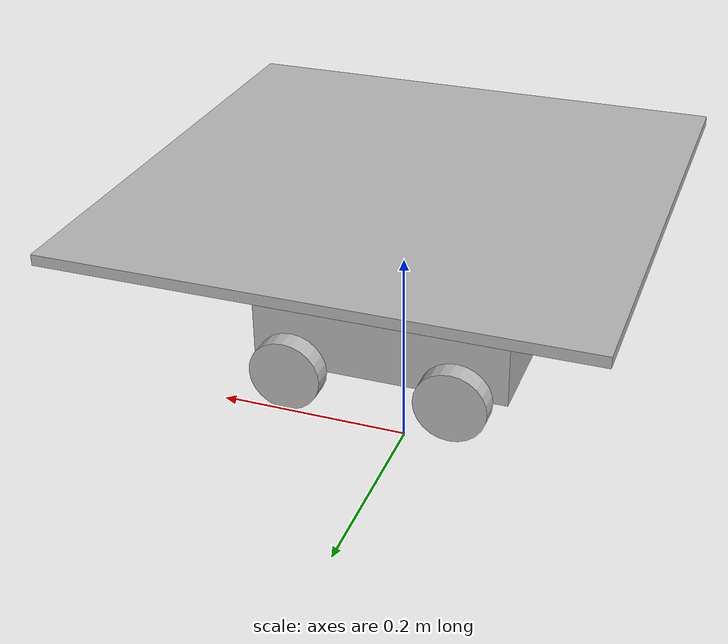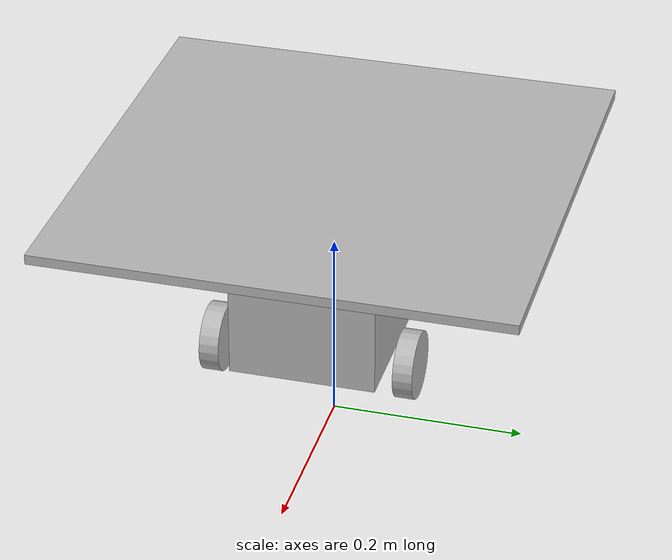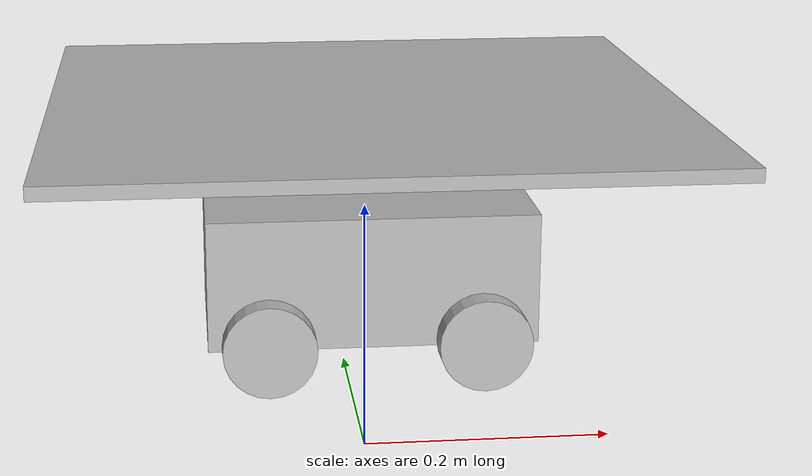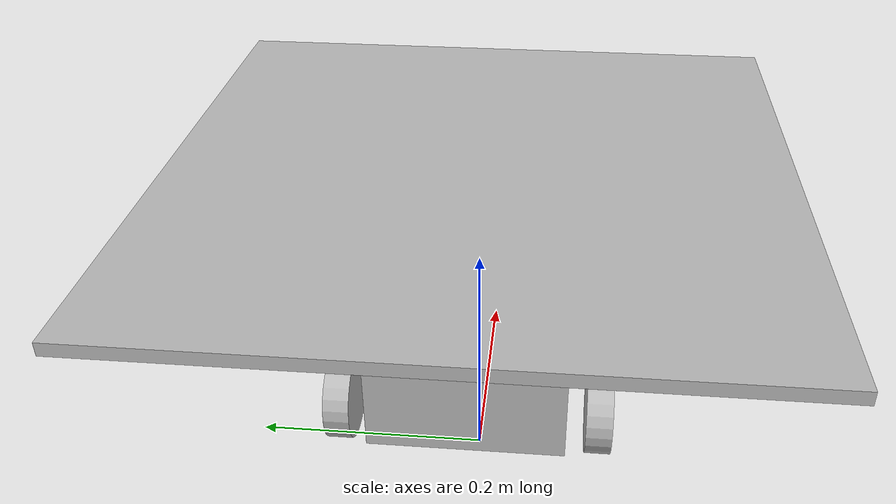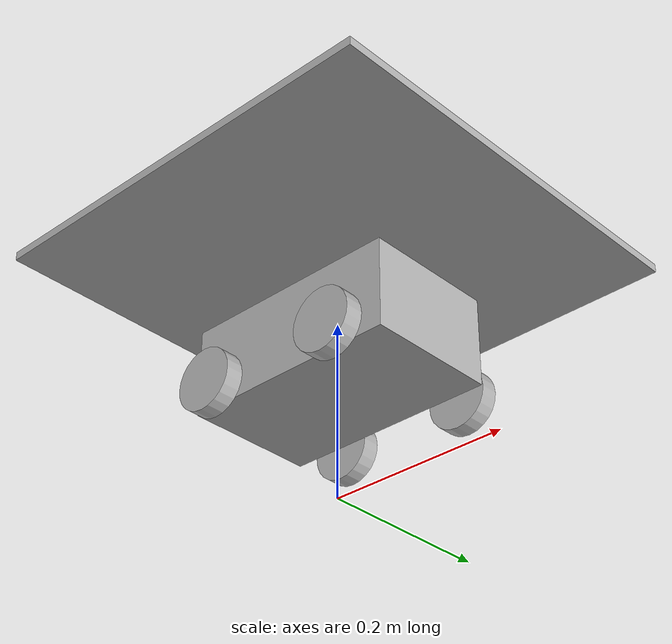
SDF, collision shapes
<?xml version="1.0" ?>
<sdf version="1.5">
  <model name="wheeltec_aruco_down">

    <include>
      <uri>model://wheeltec</uri>
    </include>

    <link name='tag'>
      <pose frame=''> 0.0 0.0 0.28 0.0 0.0 0.0</pose>
      <inertial>
        <mass>0.1</mass>
        <inertia>
          <ixx>0</ixx>
          <ixy>0</ixy>
          <ixz>0</ixz>
          <iyy>0</iyy>
          <iyz>0</iyz>
          <izz>0</izz>
        </inertia>
      </inertial>
      <collision name="platform_collision">
        <geometry>
          <box>
            <size>0.48 0.48 0.01</size>
          </box>
        </geometry>
        <surface>
          <friction>
            <ode>
              <mu>1.0</mu>
              <mu2>1.0</mu2>
            </ode>
          </friction>
        </surface>
      </collision>
      <visual name="visual">
        <cast_shadows>false</cast_shadows>
        <geometry>
          <box>
            <size>0.48 0.48 0.01</size>
          </box>
        </geometry>
        <material>
          <script>
            <uri>model://single_aruco/single_aruco.material</uri>
            <name>aruco_92</name>
          </script>
        </material>
      </visual>
    </link>

    <joint name='tag0_link' type='fixed'>
      <pose>0 0 0 0 -0 0</pose>
      <child>tag</child>
      <parent>wheeltec::base_link</parent>
      <axis>
        <xyz expressed_in='__model__'>0 1 0</xyz>
        <limit>
          <lower>-1e+16</lower>
          <upper>1e+16</upper>
        </limit>
        <dynamics>
          <spring_reference>0</spring_reference>
          <spring_stiffness>0</spring_stiffness>
        </dynamics>
      </axis>
    </joint>
    </model>
</sdf>

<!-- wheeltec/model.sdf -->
<sdf version="1.5">
  <model name="wheeltec">
    <link name="base_link">
      <pose>0 0 0.16 0 0 0</pose>
      <inertial>
        <mass>2</mass>
        <inertia>
          <ixx>0.028819942</ixx>
          <iyy>0.047333716</iyy>
          <izz>0.054201740</izz>
          <ixy>0</ixy>
          <ixz>0</ixz>
          <iyz>0</iyz>
        </inertia>
      </inertial>
      <collision name="collision">
        <pose>0 0 0 0 0 0</pose>
        <geometry>
          <box>
            <size>0.25 0.15 0.1</size>
          </box>
        </geometry>
      </collision>
      <visual name="visual">
        <pose>0.045 0 -0.05 1.57 0 0</pose>
        <geometry>
          <mesh>
            <uri>model://wheeltec/meshes/body.dae</uri>
          </mesh>
        </geometry>
      </visual>
    </link>

    <link name="right_front_wheel">
      <pose>0.08 -0.1 0.12 1.57 0 0</pose>
      <inertial>
        <mass>0.3844</mass>
        <inertia>
          <ixx>0.000480000</ixx>
          <iyy>0.000480000</iyy>
          <izz>0.000480000</izz>
          <ixy>0</ixy>
          <ixz>0</ixz>
          <iyz>0</iyz>
        </inertia>
      </inertial>
      <collision name='right_front_wheel_collision'>
        <pose>0 0 0 0 0 0</pose>
        <geometry>
          <cylinder>
            <length>0.02</length>
            <radius>0.035</radius>
          </cylinder>
        </geometry>
        <surface>
          <friction>
            <ode>
              <mu>0.5</mu>
              <mu2>0.3</mu2>
              <slip1>0.0</slip1>
              <slip2>0.0</slip2>
            </ode>
          </friction>
          <contact>
            <ode>
              <min_depth>0.001</min_depth>
            </ode>
          </contact>
        </surface>
      </collision>
      <visual name="visual">
        <pose>-0.035 0.015 -0.1 3.14 0 0</pose>
        <geometry>
          <mesh>
            <uri>model://wheeltec/meshes/front.dae</uri>
          </mesh>
        </geometry>
      </visual>
    </link>

    <link name="right_after_wheel">
      <pose>-0.08 -0.1 0.12 1.57 0 0</pose>
      <inertial>
        <mass>0.3844</mass>
        <inertia>
          <ixx>0.000480000</ixx>
          <iyy>0.000480000</iyy>
          <izz>0.000480000</izz>
          <ixy>0</ixy>
          <ixz>0</ixz>
          <iyz>0</iyz>
        </inertia>
      </inertial>
      <collision name='right_after_wheel_collision'>
        <pose>0 0 0 0 0 0</pose>
        <geometry>
          <cylinder>
            <length>0.02</length>
            <radius>0.035</radius>
          </cylinder>
        </geometry>
        <surface>
          <friction>
            <ode>
              <mu>0.5</mu>
              <mu2>0.3</mu2>
              <slip1>0.0</slip1>
              <slip2>0.0</slip2>
            </ode>
          </friction>
          <contact>
            <ode>
              <min_depth>0.001</min_depth>
            </ode>
          </contact>
        </surface>
      </collision>
      <visual name="visual">
        <pose>-0.035 0.015 -0.1 3.14 0 0</pose>
        <geometry>
          <mesh>
            <uri>model://wheeltec/meshes/front.dae</uri>
          </mesh>
        </geometry>
      </visual>
    </link>

    <link name="left_front_wheel">
      <pose>0.08 0.1 0.12 1.57 0 0</pose>
      <inertial>
        <mass>0.3844</mass>
        <inertia>
          <ixx>0.000480000</ixx>
          <iyy>0.000480000</iyy>
          <izz>0.000480000</izz>
          <ixy>0</ixy>
          <ixz>0</ixz>
          <iyz>0</iyz>
        </inertia>
      </inertial>
      <collision name='left_front_wheel_collision'>
        <pose>0 0 0 0 0 0</pose>
        <geometry>
          <cylinder>
            <length>0.02</length>
            <radius>0.035</radius>
          </cylinder>
        </geometry>
        <surface>
          <friction>
            <ode>
              <mu>0.5</mu>
              <mu2>0.3</mu2>
              <slip1>0.0</slip1>
              <slip2>0.0</slip2>
            </ode>
          </friction>
          <contact>
            <ode>
              <min_depth>0.001</min_depth>
            </ode>
          </contact>
        </surface>
      </collision>
      <visual name="visual">
        <pose>-0.035 -0.015 0.1 0 0 0</pose>
        <geometry>
          <mesh>
            <uri>model://wheeltec/meshes/front.dae</uri>
          </mesh>
        </geometry>
      </visual>
    </link>

    <link name="left_after_wheel">
      <pose>-0.08 0.1 0.12 1.57 0 0</pose>
      <inertial>
        <mass>0.3844</mass>
        <inertia>
          <ixx>0.000480000</ixx>
          <iyy>0.000480000</iyy>
          <izz>0.000480000</izz>
          <ixy>0</ixy>
          <ixz>0</ixz>
          <iyz>0</iyz>
        </inertia>
      </inertial>
      <collision name='left_after_wheel_collision'>
        <pose>0 0 0 0 0 0</pose>
        <geometry>
          <cylinder>
            <length>0.02</length>
            <radius>0.035</radius>
          </cylinder>
        </geometry>
        <surface>
          <friction>
            <ode>
              <mu>0.5</mu>
              <mu2>0.3</mu2>
              <slip1>0.0</slip1>
              <slip2>0.0</slip2>
            </ode>
          </friction>
          <contact>
            <ode>
              <min_depth>0.001</min_depth>
            </ode>
          </contact>
        </surface>
      </collision>
      <visual name="visual">
        <pose>-0.035 -0.015 0.1 0 0 0</pose>
        <geometry>
          <mesh>
            <uri>model://wheeltec/meshes/front.dae</uri>
          </mesh>
        </geometry>
      </visual>
    </link>

    <joint type="revolute" name="right_front_wheel_joint">
      <child>right_front_wheel</child>
      <parent>base_link</parent>
      <axis>
        <xyz>0 1 0</xyz>
        <limit>
          <lower>-1e+16</lower>
          <upper>1e+16</upper>
        </limit>
        <dynamics>
          <spring_reference>0</spring_reference>
          <spring_stiffness>0</spring_stiffness>
        </dynamics>
        <use_parent_model_frame>1</use_parent_model_frame>
      </axis>
    </joint>

    <joint type="revolute" name="right_after_wheel_joint">
      <child>right_after_wheel</child>
      <parent>base_link</parent>
      <axis>
        <xyz>0 1 0</xyz>
        <limit>
          <lower>-1e+16</lower>
          <upper>1e+16</upper>
        </limit>
        <dynamics>
          <spring_reference>0</spring_reference>
          <spring_stiffness>0</spring_stiffness>
        </dynamics>
        <use_parent_model_frame>1</use_parent_model_frame>
      </axis>
    </joint>

    <joint type="revolute" name="left_front_wheel_joint">
      <child>left_front_wheel</child>
      <parent>base_link</parent>
      <axis>
        <xyz>0 1 0</xyz>
        <limit>
          <lower>-1e+16</lower>
          <upper>1e+16</upper>
        </limit>
        <dynamics>
          <spring_reference>0</spring_reference>
          <spring_stiffness>0</spring_stiffness>
        </dynamics>
        <use_parent_model_frame>1</use_parent_model_frame>
      </axis>
    </joint>

    <joint type="revolute" name="left_after_wheel_joint">
      <child>left_after_wheel</child>
      <parent>base_link</parent>
      <axis>
        <xyz>0 1 0</xyz>
        <limit>
          <lower>-1e+16</lower>
          <upper>1e+16</upper>
        </limit>
        <dynamics>
          <spring_reference>0</spring_reference>
          <spring_stiffness>0</spring_stiffness>
        </dynamics>
        <use_parent_model_frame>1</use_parent_model_frame>
      </axis>
    </joint>

    <plugin name="mecanum_controller" filename="libgazebo_ros_planar_move.so">
            <updateRate>100.0</updateRate>
            <cmdTimeout>0.01</cmdTimeout>
            <leftFrontJoint>left_front_wheel_joint</leftFrontJoint>
            <rightFrontJoint>right_front_wheel_joint</rightFrontJoint>
            <leftRearJoint>left_after_wheel_joint</leftRearJoint>
            <rightRearJoint>right_after_wheel_joint</rightRearJoint>
            <wheelSeparation>0.1</wheelSeparation>
            <wheelDiameter>0.07</wheelDiameter>
            <torque>2</torque>
            <commandTopic>cmd_vel</commandTopic>
            <odometryFrame>world</odometryFrame>
            <odometryTopic>odom</odometryTopic>
            <robotBaseFrame>base_link</robotBaseFrame>
            <broadcastTF>0</broadcastTF>
            <publishTf>0</publishTf>
            <publishWheelJointState>true</publishWheelJointState>
            <alwaysOn>true</alwaysOn>
        </plugin>

  </model>
</sdf>
